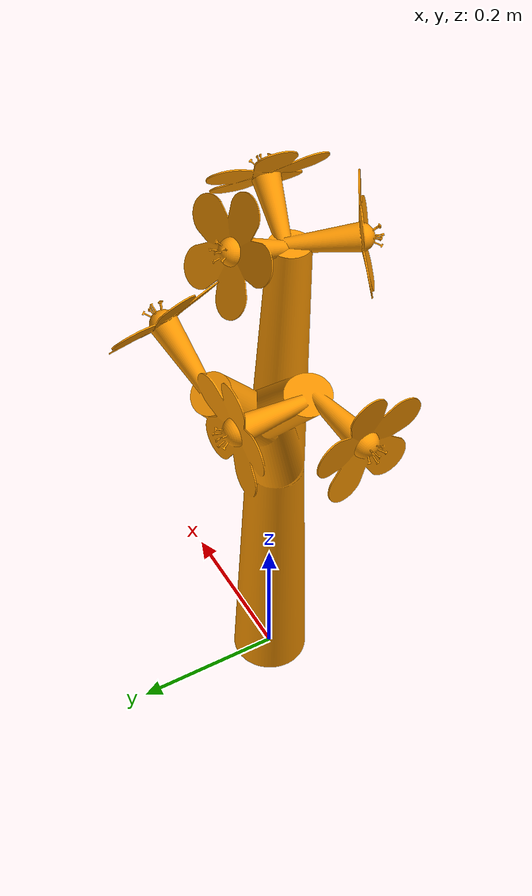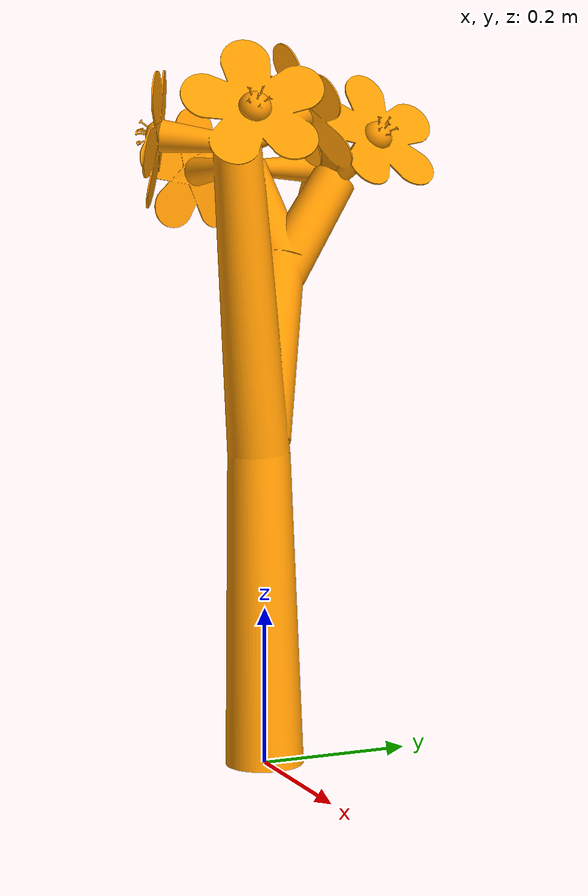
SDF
<?xml version='1.0'?>
<sdf version='1.6'>
  <model name='flower'>
    <link name='link_0'>
      <pose frame=''>0 0 0 0 0 1.57</pose>
      <inertial>
        <mass>1</mass>
        <inertia>
          <ixx>0.166667</ixx>
          <ixy>0</ixy>
          <ixz>0</ixz>
          <iyy>0.166667</iyy>
          <iyz>0</iyz>
          <izz>0.166667</izz>
        </inertia>
        <pose frame=''>0 0 0 0 -0 0</pose>
      </inertial>
      <gravity>1</gravity>
      <self_collide>0</self_collide>
      <kinematic>0</kinematic>
      <visual name='visual'>
        <pose frame=''>0 0 0 0 -0 0</pose>
        <geometry>
          <mesh>
            <uri>model://pollibee_flower/meshes/flower.stl</uri>
            <scale>0.001 0.001 0.001</scale>
          </mesh>
        </geometry>
        <material>
          <lighting>1</lighting>
          <script>
            <uri>file://media/materials/scripts/gazebo.material</uri>
            <name>Gazebo/Grey</name>
          </script>
          <ambient>1 0.6 0 1</ambient>
          <diffuse>1 0.6 0 1</diffuse>
          <specular>0.01 0.01 0.01 1</specular>
          <emissive>0 0 0 1</emissive>
          <shader type='vertex'>
            <normal_map>__default__</normal_map>
          </shader>
        </material>
        <cast_shadows>1</cast_shadows>
        <transparency>0</transparency>
      </visual>
      <collision name='collision'>
        <laser_retro>0</laser_retro>
        <max_contacts>10</max_contacts>
        <pose frame=''>0 0 0 0 -0 0</pose>
        <geometry>
          <mesh>
            <uri>model://pollibee_flower/meshes/flower.stl</uri>
            <scale>0.001 0.001 0.001</scale>
          </mesh>
        </geometry>
        <surface>
          <friction>
            <ode>
              <mu>1</mu>
              <mu2>1</mu2>
              <fdir1>0 0 0</fdir1>
              <slip1>0</slip1>
              <slip2>0</slip2>
            </ode>
            <torsional>
              <coefficient>1</coefficient>
              <patch_radius>0</patch_radius>
              <surface_radius>0</surface_radius>
              <use_patch_radius>1</use_patch_radius>
              <ode>
                <slip>0</slip>
              </ode>
            </torsional>
          </friction>
          <bounce>
            <restitution_coefficient>0</restitution_coefficient>
            <threshold>1e+06</threshold>
          </bounce>
          <contact>
            <collide_without_contact>0</collide_without_contact>
            <collide_without_contact_bitmask>1</collide_without_contact_bitmask>
            <collide_bitmask>1</collide_bitmask>
            <ode>
              <soft_cfm>0</soft_cfm>
              <soft_erp>0.2</soft_erp>
              <kp>1e+13</kp>
              <kd>1</kd>
              <max_vel>0.01</max_vel>
              <min_depth>0</min_depth>
            </ode>
            <bullet>
              <split_impulse>1</split_impulse>
              <split_impulse_penetration_threshold>-0.01</split_impulse_penetration_threshold>
              <soft_cfm>0</soft_cfm>
              <soft_erp>0.2</soft_erp>
              <kp>1e+13</kp>
              <kd>1</kd>
            </bullet>
          </contact>
        </surface>
      </collision>
    </link>
    <static>1</static>
      <plugin filename="ignition-gazebo-pose-publisher-system"
      name="ignition::gazebo::systems::PosePublisher">
          <publish_link_pose>true</publish_link_pose>
          <publish_collision_pose>false</publish_collision_pose>
          <publish_visual_pose>false</publish_visual_pose>
          <publish_nested_model_pose>false</publish_nested_model_pose>
          <publish_model_pose>true</publish_model_pose>
          <use_pose_vector_msg>false</use_pose_vector_msg>
          <static_publisher>false</static_publisher>
          <update_frequency>100</update_frequency>
      </plugin>
  </model>
</sdf>
